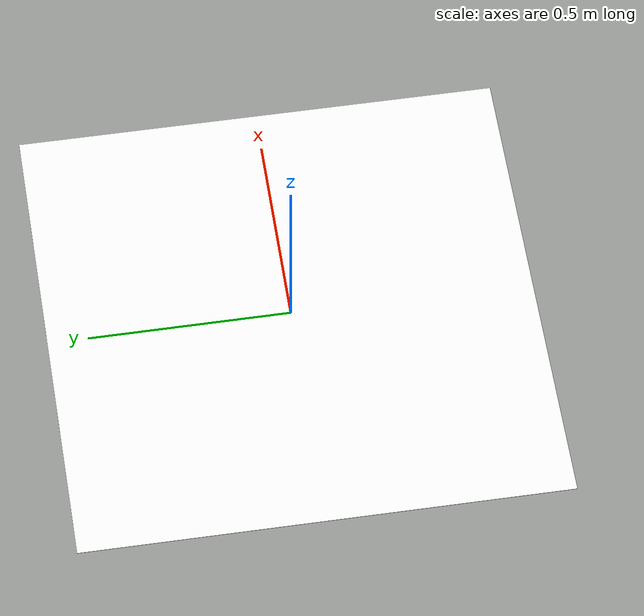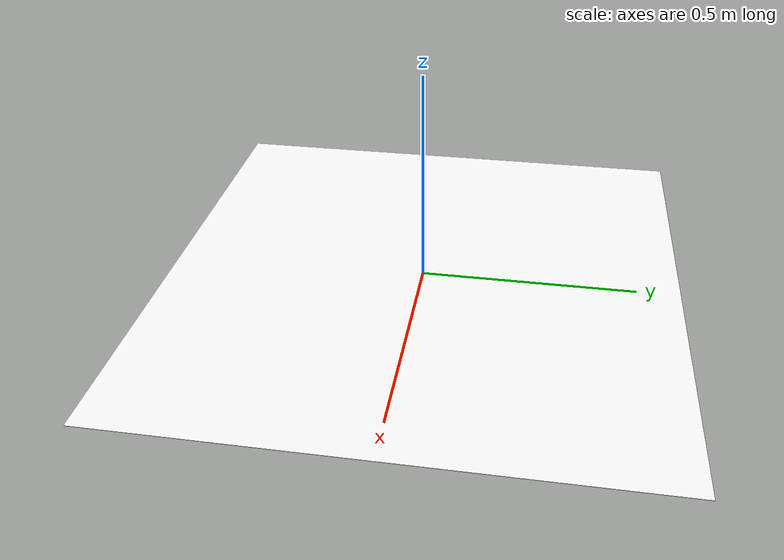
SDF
<?xml version="1.0"?>
<sdf version="1.9">
  <model name="aruco_land_3">
    <static>true</static>
    <link name="link">
      <visual name="markers">
        <pose>0 0 0.003 0 0 0</pose>
        <cast_shadows>false</cast_shadows>
        <geometry>
          <plane>
            <normal>0 0 1</normal>
            <size>1.2 1.2</size>
          </plane>
        </geometry>
        <material>
          <diffuse>1 1 1 1</diffuse>
          <specular>0 0 0 1</specular>
          <pbr>
            <metal>
              <albedo_map>model://aruco_land_3/materials/textures/aruco_land_3.png</albedo_map>
              <emissive_map>model://aruco_land_3/materials/textures/aruco_land_3.png</emissive_map>
              <roughness>1.0</roughness>
            </metal>
          </pbr>
        </material>
      </visual>
    </link>
  </model>
</sdf>
